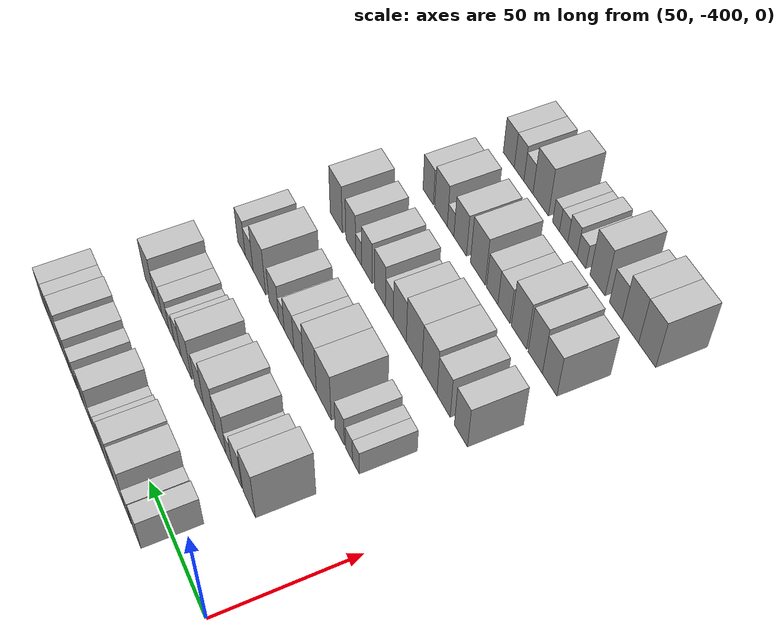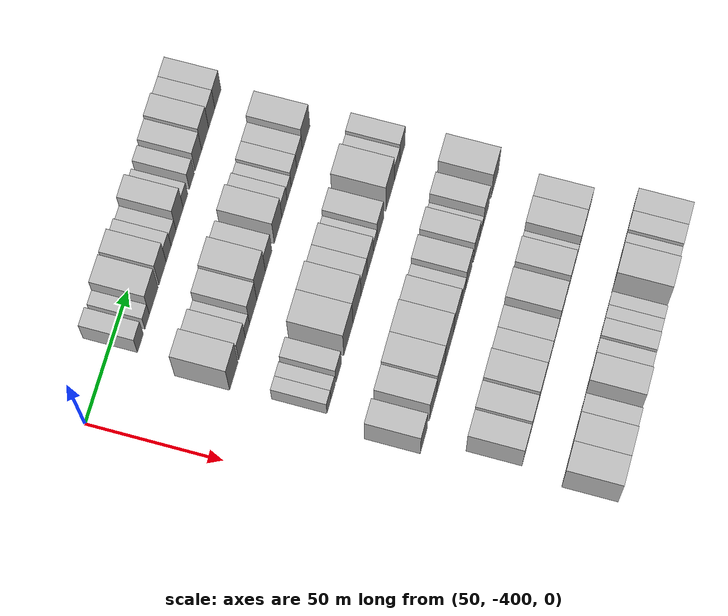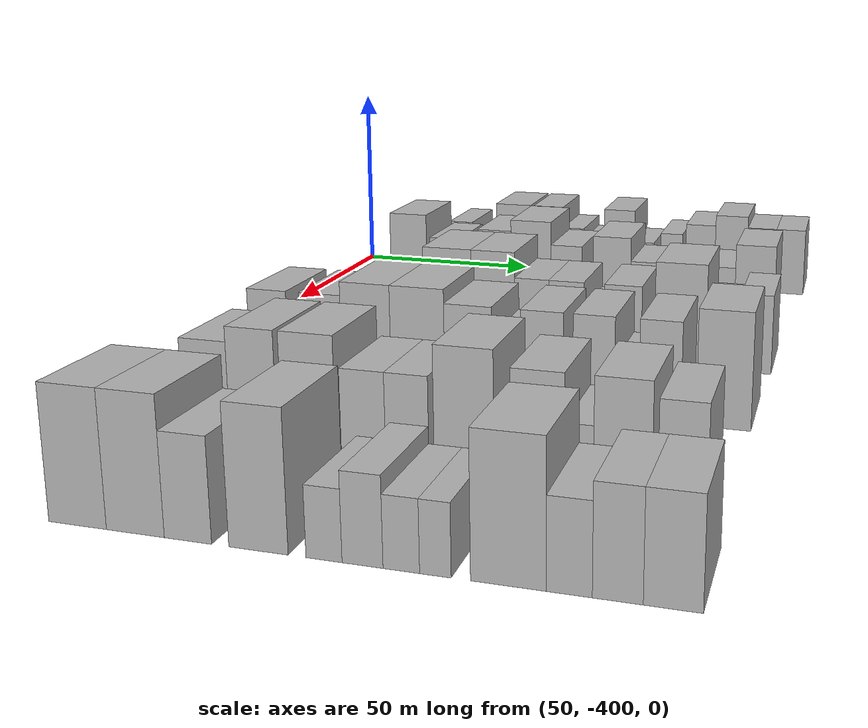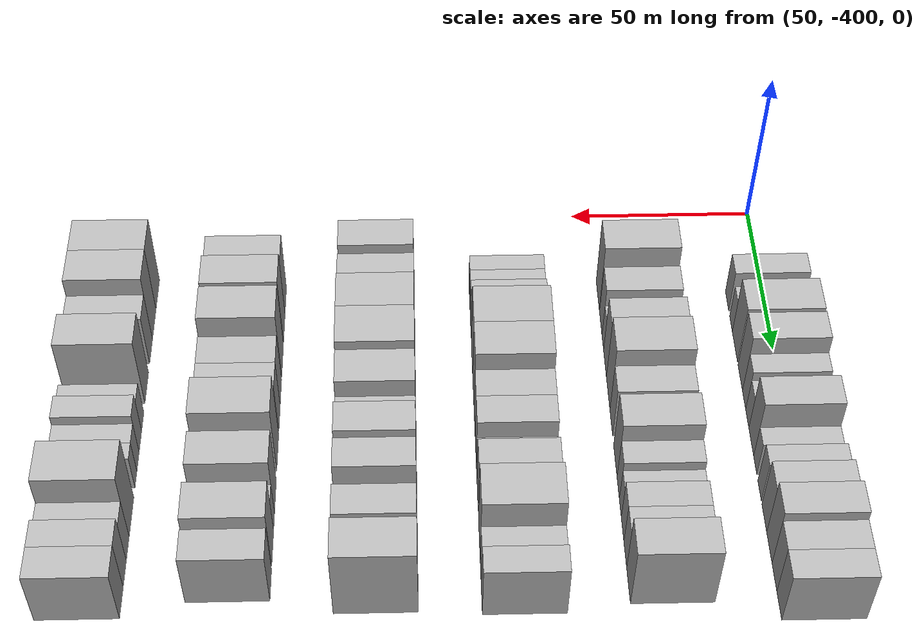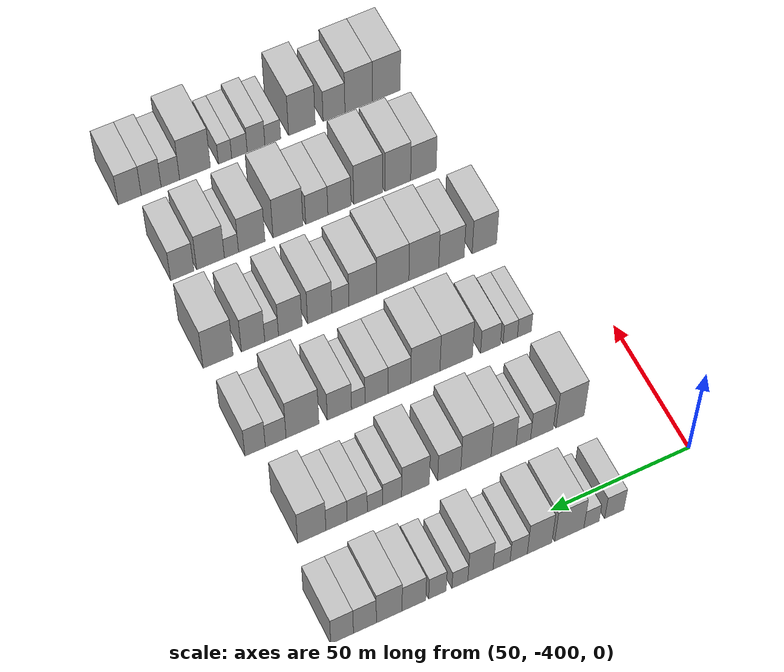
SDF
<sdf version="1.6">
 <world name="default">
  <model name="building_25">
   <static>1</static>
   <pose>50.0000 -367.2235 0 0.000000 0.000000 0.000000</pose>
   <link name="link">
    <pose>0 0 7.50 0 0 0</pose>
    <collision name="collision"><geometry><box><size>20.0000 6.9162 15.0000</size></box></geometry></collision>
    <visual name="visual">
     <cast_shadows>0</cast_shadows>
     <geometry><box><size>20.0000 6.9162 15.0000</size></box></geometry>
     <material>
      <script>
       <uri>model://HANNAS_wall/materials/scripts</uri>
       <uri>model://HANNAS_wall/materials/textures</uri>
       <name>vrc/HANNAS_wall</name>
      </script>
     </material>
    </visual>
   </link>
  </model>
  <model name="building_26">
   <static>1</static>
   <pose>50.0000 -359.0324 0 0.000000 0.000000 0.000000</pose>
   <link name="link">
    <pose>0 0 6.00 0 0 0</pose>
    <collision name="collision"><geometry><box><size>20.0000 5.4661 12.0000</size></box></geometry></collision>
    <visual name="visual">
     <cast_shadows>0</cast_shadows>
     <geometry><box><size>20.0000 5.4661 12.0000</size></box></geometry>
     <material>
      <script>
       <uri>model://HANNAS_wall/materials/scripts</uri>
       <uri>model://HANNAS_wall/materials/textures</uri>
       <name>vrc/HANNAS_wall</name>
      </script>
     </material>
    </visual>
   </link>
  </model>
  <model name="building_27">
   <static>1</static>
   <pose>50.0000 -351.0920 0 0.000000 0.000000 0.000000</pose>
   <link name="link">
    <pose>0 0 10.50 0 0 0</pose>
    <collision name="collision"><geometry><box><size>20.0000 10.4146 21.0000</size></box></geometry></collision>
    <visual name="visual">
     <cast_shadows>0</cast_shadows>
     <geometry><box><size>20.0000 10.4146 21.0000</size></box></geometry>
     <material>
      <script>
       <uri>model://HANNAS_wall/materials/scripts</uri>
       <uri>model://HANNAS_wall/materials/textures</uri>
       <name>vrc/HANNAS_wall</name>
      </script>
     </material>
    </visual>
   </link>
  </model>
  <model name="building_28">
   <static>1</static>
   <pose>50.0000 -340.5171 0 0.000000 0.000000 0.000000</pose>
   <link name="link">
    <pose>0 0 10.50 0 0 0</pose>
    <collision name="collision"><geometry><box><size>20.0000 8.7352 21.0000</size></box></geometry></collision>
    <visual name="visual">
     <cast_shadows>0</cast_shadows>
     <geometry><box><size>20.0000 8.7352 21.0000</size></box></geometry>
     <material>
      <script>
       <uri>model://HANNAS_wall/materials/scripts</uri>
       <uri>model://HANNAS_wall/materials/textures</uri>
       <name>vrc/HANNAS_wall</name>
      </script>
     </material>
    </visual>
   </link>
  </model>
  <model name="building_29">
   <static>1</static>
   <pose>50.0000 -333.0898 0 0.000000 0.000000 0.000000</pose>
   <link name="link">
    <pose>0 0 7.50 0 0 0</pose>
    <collision name="collision"><geometry><box><size>20.0000 6.1194 15.0000</size></box></geometry></collision>
    <visual name="visual">
     <cast_shadows>0</cast_shadows>
     <geometry><box><size>20.0000 6.1194 15.0000</size></box></geometry>
     <material>
      <script>
       <uri>model://HANNAS_wall/materials/scripts</uri>
       <uri>model://HANNAS_wall/materials/textures</uri>
       <name>vrc/HANNAS_wall</name>
      </script>
     </material>
    </visual>
   </link>
  </model>
  <model name="building_30">
   <static>1</static>
   <pose>50.0000 -327.0355 0 0.000000 0.000000 0.000000</pose>
   <link name="link">
    <pose>0 0 6.00 0 0 0</pose>
    <collision name="collision"><geometry><box><size>20.0000 5.9892 12.0000</size></box></geometry></collision>
    <visual name="visual">
     <cast_shadows>0</cast_shadows>
     <geometry><box><size>20.0000 5.9892 12.0000</size></box></geometry>
     <material>
      <script>
       <uri>model://HANNAS_wall/materials/scripts</uri>
       <uri>model://HANNAS_wall/materials/textures</uri>
       <name>vrc/HANNAS_wall</name>
      </script>
     </material>
    </visual>
   </link>
  </model>
  <model name="building_31">
   <static>1</static>
   <pose>50.0000 -319.6164 0 0.000000 0.000000 0.000000</pose>
   <link name="link">
    <pose>0 0 10.50 0 0 0</pose>
    <collision name="collision"><geometry><box><size>20.0000 8.8489 21.0000</size></box></geometry></collision>
    <visual name="visual">
     <cast_shadows>0</cast_shadows>
     <geometry><box><size>20.0000 8.8489 21.0000</size></box></geometry>
     <material>
      <script>
       <uri>model://HANNAS_wall/materials/scripts</uri>
       <uri>model://HANNAS_wall/materials/textures</uri>
       <name>vrc/HANNAS_wall</name>
      </script>
     </material>
    </visual>
   </link>
  </model>
  <model name="building_32">
   <static>1</static>
   <pose>50.0000 -312.4067 0 0.000000 0.000000 0.000000</pose>
   <link name="link">
    <pose>0 0 6.00 0 0 0</pose>
    <collision name="collision"><geometry><box><size>20.0000 5.5707 12.0000</size></box></geometry></collision>
    <visual name="visual">
     <cast_shadows>0</cast_shadows>
     <geometry><box><size>20.0000 5.5707 12.0000</size></box></geometry>
     <material>
      <script>
       <uri>model://HANNAS_wall/materials/scripts</uri>
       <uri>model://HANNAS_wall/materials/textures</uri>
       <name>vrc/HANNAS_wall</name>
      </script>
     </material>
    </visual>
   </link>
  </model>
  <model name="building_33">
   <static>1</static>
   <pose>50.0000 -304.5774 0 0.000000 0.000000 0.000000</pose>
   <link name="link">
    <pose>0 0 7.50 0 0 0</pose>
    <collision name="collision"><geometry><box><size>20.0000 6.0878 15.0000</size></box></geometry></collision>
    <visual name="visual">
     <cast_shadows>0</cast_shadows>
     <geometry><box><size>20.0000 6.0878 15.0000</size></box></geometry>
     <material>
      <script>
       <uri>model://HANNAS_wall/materials/scripts</uri>
       <uri>model://HANNAS_wall/materials/textures</uri>
       <name>vrc/HANNAS_wall</name>
      </script>
     </material>
    </visual>
   </link>
  </model>
  <model name="building_34">
   <static>1</static>
   <pose>50.0000 -296.4099 0 0.000000 0.000000 0.000000</pose>
   <link name="link">
    <pose>0 0 9.00 0 0 0</pose>
    <collision name="collision"><geometry><box><size>20.0000 8.2473 18.0000</size></box></geometry></collision>
    <visual name="visual">
     <cast_shadows>0</cast_shadows>
     <geometry><box><size>20.0000 8.2473 18.0000</size></box></geometry>
     <material>
      <script>
       <uri>model://HANNAS_wall/materials/scripts</uri>
       <uri>model://HANNAS_wall/materials/textures</uri>
       <name>vrc/HANNAS_wall</name>
      </script>
     </material>
    </visual>
   </link>
  </model>
  <model name="building_35">
   <static>1</static>
   <pose>50.0000 -287.8612 0 0.000000 0.000000 0.000000</pose>
   <link name="link">
    <pose>0 0 10.50 0 0 0</pose>
    <collision name="collision"><geometry><box><size>20.0000 8.8501 21.0000</size></box></geometry></collision>
    <visual name="visual">
     <cast_shadows>0</cast_shadows>
     <geometry><box><size>20.0000 8.8501 21.0000</size></box></geometry>
     <material>
      <script>
       <uri>model://HANNAS_wall/materials/scripts</uri>
       <uri>model://HANNAS_wall/materials/textures</uri>
       <name>vrc/HANNAS_wall</name>
      </script>
     </material>
    </visual>
   </link>
  </model>
  <model name="building_36">
   <static>1</static>
   <pose>50.0000 -279.5082 0 0.000000 0.000000 0.000000</pose>
   <link name="link">
    <pose>0 0 9.00 0 0 0</pose>
    <collision name="collision"><geometry><box><size>20.0000 7.8559 18.0000</size></box></geometry></collision>
    <visual name="visual">
     <cast_shadows>0</cast_shadows>
     <geometry><box><size>20.0000 7.8559 18.0000</size></box></geometry>
     <material>
      <script>
       <uri>model://HANNAS_wall/materials/scripts</uri>
       <uri>model://HANNAS_wall/materials/textures</uri>
       <name>vrc/HANNAS_wall</name>
      </script>
     </material>
    </visual>
   </link>
  </model>
  <model name="building_37">
   <static>1</static>
   <pose>50.0000 -271.6983 0 0.000000 0.000000 0.000000</pose>
   <link name="link">
    <pose>0 0 9.00 0 0 0</pose>
    <collision name="collision"><geometry><box><size>20.0000 7.7639 18.0000</size></box></geometry></collision>
    <visual name="visual">
     <cast_shadows>0</cast_shadows>
     <geometry><box><size>20.0000 7.7639 18.0000</size></box></geometry>
     <material>
      <script>
       <uri>model://HANNAS_wall/materials/scripts</uri>
       <uri>model://HANNAS_wall/materials/textures</uri>
       <name>vrc/HANNAS_wall</name>
      </script>
     </material>
    </visual>
   </link>
  </model>
  <model name="building_159">
   <static>1</static>
   <pose>85.0000 -370.1567 0 0.000000 0.000000 0.000000</pose>
   <link name="link">
    <pose>0 0 12.00 0 0 0</pose>
    <collision name="collision"><geometry><box><size>20.0000 10.3174 24.0000</size></box></geometry></collision>
    <visual name="visual">
     <cast_shadows>0</cast_shadows>
     <geometry><box><size>20.0000 10.3174 24.0000</size></box></geometry>
     <material>
      <script>
       <uri>model://HANNAS_wall/materials/scripts</uri>
       <uri>model://HANNAS_wall/materials/textures</uri>
       <name>vrc/HANNAS_wall</name>
      </script>
     </material>
    </visual>
   </link>
  </model>
  <model name="building_160">
   <static>1</static>
   <pose>85.0000 -359.8728 0 0.000000 0.000000 0.000000</pose>
   <link name="link">
    <pose>0 0 9.00 0 0 0</pose>
    <collision name="collision"><geometry><box><size>20.0000 8.2504 18.0000</size></box></geometry></collision>
    <visual name="visual">
     <cast_shadows>0</cast_shadows>
     <geometry><box><size>20.0000 8.2504 18.0000</size></box></geometry>
     <material>
      <script>
       <uri>model://HANNAS_wall/materials/scripts</uri>
       <uri>model://HANNAS_wall/materials/textures</uri>
       <name>vrc/HANNAS_wall</name>
      </script>
     </material>
    </visual>
   </link>
  </model>
  <model name="building_161">
   <static>1</static>
   <pose>85.0000 -353.1298 0 0.000000 0.000000 0.000000</pose>
   <link name="link">
    <pose>0 0 6.00 0 0 0</pose>
    <collision name="collision"><geometry><box><size>20.0000 5.2355 12.0000</size></box></geometry></collision>
    <visual name="visual">
     <cast_shadows>0</cast_shadows>
     <geometry><box><size>20.0000 5.2355 12.0000</size></box></geometry>
     <material>
      <script>
       <uri>model://HANNAS_wall/materials/scripts</uri>
       <uri>model://HANNAS_wall/materials/textures</uri>
       <name>vrc/HANNAS_wall</name>
      </script>
     </material>
    </visual>
   </link>
  </model>
  <model name="building_162">
   <static>1</static>
   <pose>85.0000 -345.9728 0 0.000000 0.000000 0.000000</pose>
   <link name="link">
    <pose>0 0 10.50 0 0 0</pose>
    <collision name="collision"><geometry><box><size>20.0000 9.0785 21.0000</size></box></geometry></collision>
    <visual name="visual">
     <cast_shadows>0</cast_shadows>
     <geometry><box><size>20.0000 9.0785 21.0000</size></box></geometry>
     <material>
      <script>
       <uri>model://HANNAS_wall/materials/scripts</uri>
       <uri>model://HANNAS_wall/materials/textures</uri>
       <name>vrc/HANNAS_wall</name>
      </script>
     </material>
    </visual>
   </link>
  </model>
  <model name="building_163">
   <static>1</static>
   <pose>85.0000 -335.9956 0 0.000000 0.000000 0.000000</pose>
   <link name="link">
    <pose>0 0 12.00 0 0 0</pose>
    <collision name="collision"><geometry><box><size>20.0000 10.8760 24.0000</size></box></geometry></collision>
    <visual name="visual">
     <cast_shadows>0</cast_shadows>
     <geometry><box><size>20.0000 10.8760 24.0000</size></box></geometry>
     <material>
      <script>
       <uri>model://HANNAS_wall/materials/scripts</uri>
       <uri>model://HANNAS_wall/materials/textures</uri>
       <name>vrc/HANNAS_wall</name>
      </script>
     </material>
    </visual>
   </link>
  </model>
  <model name="building_164">
   <static>1</static>
   <pose>85.0000 -326.4263 0 0.000000 0.000000 0.000000</pose>
   <link name="link">
    <pose>0 0 9.00 0 0 0</pose>
    <collision name="collision"><geometry><box><size>20.0000 8.2626 18.0000</size></box></geometry></collision>
    <visual name="visual">
     <cast_shadows>0</cast_shadows>
     <geometry><box><size>20.0000 8.2626 18.0000</size></box></geometry>
     <material>
      <script>
       <uri>model://HANNAS_wall/materials/scripts</uri>
       <uri>model://HANNAS_wall/materials/textures</uri>
       <name>vrc/HANNAS_wall</name>
      </script>
     </material>
    </visual>
   </link>
  </model>
  <model name="building_165">
   <static>1</static>
   <pose>85.0000 -314.3813 0 0.000000 0.000000 0.000000</pose>
   <link name="link">
    <pose>0 0 10.50 0 0 0</pose>
    <collision name="collision"><geometry><box><size>20.0000 9.8274 21.0000</size></box></geometry></collision>
    <visual name="visual">
     <cast_shadows>0</cast_shadows>
     <geometry><box><size>20.0000 9.8274 21.0000</size></box></geometry>
     <material>
      <script>
       <uri>model://HANNAS_wall/materials/scripts</uri>
       <uri>model://HANNAS_wall/materials/textures</uri>
       <name>vrc/HANNAS_wall</name>
      </script>
     </material>
    </visual>
   </link>
  </model>
  <model name="building_166">
   <static>1</static>
   <pose>85.0000 -306.1207 0 0.000000 0.000000 0.000000</pose>
   <link name="link">
    <pose>0 0 7.50 0 0 0</pose>
    <collision name="collision"><geometry><box><size>20.0000 6.6938 15.0000</size></box></geometry></collision>
    <visual name="visual">
     <cast_shadows>0</cast_shadows>
     <geometry><box><size>20.0000 6.6938 15.0000</size></box></geometry>
     <material>
      <script>
       <uri>model://HANNAS_wall/materials/scripts</uri>
       <uri>model://HANNAS_wall/materials/textures</uri>
       <name>vrc/HANNAS_wall</name>
      </script>
     </material>
    </visual>
   </link>
  </model>
  <model name="building_167">
   <static>1</static>
   <pose>85.0000 -300.0703 0 0.000000 0.000000 0.000000</pose>
   <link name="link">
    <pose>0 0 6.00 0 0 0</pose>
    <collision name="collision"><geometry><box><size>20.0000 5.4071 12.0000</size></box></geometry></collision>
    <visual name="visual">
     <cast_shadows>0</cast_shadows>
     <geometry><box><size>20.0000 5.4071 12.0000</size></box></geometry>
     <material>
      <script>
       <uri>model://HANNAS_wall/materials/scripts</uri>
       <uri>model://HANNAS_wall/materials/textures</uri>
       <name>vrc/HANNAS_wall</name>
      </script>
     </material>
    </visual>
   </link>
  </model>
  <model name="building_168">
   <static>1</static>
   <pose>85.0000 -293.8270 0 0.000000 0.000000 0.000000</pose>
   <link name="link">
    <pose>0 0 7.50 0 0 0</pose>
    <collision name="collision"><geometry><box><size>20.0000 7.0795 15.0000</size></box></geometry></collision>
    <visual name="visual">
     <cast_shadows>0</cast_shadows>
     <geometry><box><size>20.0000 7.0795 15.0000</size></box></geometry>
     <material>
      <script>
       <uri>model://HANNAS_wall/materials/scripts</uri>
       <uri>model://HANNAS_wall/materials/textures</uri>
       <name>vrc/HANNAS_wall</name>
      </script>
     </material>
    </visual>
   </link>
  </model>
  <model name="building_169">
   <static>1</static>
   <pose>85.0000 -286.5811 0 0.000000 0.000000 0.000000</pose>
   <link name="link">
    <pose>0 0 7.50 0 0 0</pose>
    <collision name="collision"><geometry><box><size>20.0000 7.4122 15.0000</size></box></geometry></collision>
    <visual name="visual">
     <cast_shadows>0</cast_shadows>
     <geometry><box><size>20.0000 7.4122 15.0000</size></box></geometry>
     <material>
      <script>
       <uri>model://HANNAS_wall/materials/scripts</uri>
       <uri>model://HANNAS_wall/materials/textures</uri>
       <name>vrc/HANNAS_wall</name>
      </script>
     </material>
    </visual>
   </link>
  </model>
  <model name="building_170">
   <static>1</static>
   <pose>85.0000 -277.9471 0 0.000000 0.000000 0.000000</pose>
   <link name="link">
    <pose>0 0 10.50 0 0 0</pose>
    <collision name="collision"><geometry><box><size>20.0000 9.8559 21.0000</size></box></geometry></collision>
    <visual name="visual">
     <cast_shadows>0</cast_shadows>
     <geometry><box><size>20.0000 9.8559 21.0000</size></box></geometry>
     <material>
      <script>
       <uri>model://HANNAS_wall/materials/scripts</uri>
       <uri>model://HANNAS_wall/materials/textures</uri>
       <name>vrc/HANNAS_wall</name>
      </script>
     </material>
    </visual>
   </link>
  </model>
  <model name="building_288">
   <static>1</static>
   <pose>120.0000 -371.8585 0 0.000000 0.000000 0.000000</pose>
   <link name="link">
    <pose>0 0 6.00 0 0 0</pose>
    <collision name="collision"><geometry><box><size>20.0000 5.1645 12.0000</size></box></geometry></collision>
    <visual name="visual">
     <cast_shadows>0</cast_shadows>
     <geometry><box><size>20.0000 5.1645 12.0000</size></box></geometry>
     <material>
      <script>
       <uri>model://HANNAS_wall/materials/scripts</uri>
       <uri>model://HANNAS_wall/materials/textures</uri>
       <name>vrc/HANNAS_wall</name>
      </script>
     </material>
    </visual>
   </link>
  </model>
  <model name="building_289">
   <static>1</static>
   <pose>120.0000 -366.6323 0 0.000000 0.000000 0.000000</pose>
   <link name="link">
    <pose>0 0 6.00 0 0 0</pose>
    <collision name="collision"><geometry><box><size>20.0000 5.2880 12.0000</size></box></geometry></collision>
    <visual name="visual">
     <cast_shadows>0</cast_shadows>
     <geometry><box><size>20.0000 5.2880 12.0000</size></box></geometry>
     <material>
      <script>
       <uri>model://HANNAS_wall/materials/scripts</uri>
       <uri>model://HANNAS_wall/materials/textures</uri>
       <name>vrc/HANNAS_wall</name>
      </script>
     </material>
    </visual>
   </link>
  </model>
  <model name="building_290">
   <static>1</static>
   <pose>120.0000 -359.3294 0 0.000000 0.000000 0.000000</pose>
   <link name="link">
    <pose>0 0 7.50 0 0 0</pose>
    <collision name="collision"><geometry><box><size>20.0000 7.3178 15.0000</size></box></geometry></collision>
    <visual name="visual">
     <cast_shadows>0</cast_shadows>
     <geometry><box><size>20.0000 7.3178 15.0000</size></box></geometry>
     <material>
      <script>
       <uri>model://HANNAS_wall/materials/scripts</uri>
       <uri>model://HANNAS_wall/materials/textures</uri>
       <name>vrc/HANNAS_wall</name>
      </script>
     </material>
    </visual>
   </link>
  </model>
  <model name="building_291">
   <static>1</static>
   <pose>120.0000 -346.7161 0 0.000000 0.000000 0.000000</pose>
   <link name="link">
    <pose>0 0 12.00 0 0 0</pose>
    <collision name="collision"><geometry><box><size>20.0000 11.9087 24.0000</size></box></geometry></collision>
    <visual name="visual">
     <cast_shadows>0</cast_shadows>
     <geometry><box><size>20.0000 11.9087 24.0000</size></box></geometry>
     <material>
      <script>
       <uri>model://HANNAS_wall/materials/scripts</uri>
       <uri>model://HANNAS_wall/materials/textures</uri>
       <name>vrc/HANNAS_wall</name>
      </script>
     </material>
    </visual>
   </link>
  </model>
  <model name="building_292">
   <static>1</static>
   <pose>120.0000 -335.4321 0 0.000000 0.000000 0.000000</pose>
   <link name="link">
    <pose>0 0 12.00 0 0 0</pose>
    <collision name="collision"><geometry><box><size>20.0000 10.6594 24.0000</size></box></geometry></collision>
    <visual name="visual">
     <cast_shadows>0</cast_shadows>
     <geometry><box><size>20.0000 10.6594 24.0000</size></box></geometry>
     <material>
      <script>
       <uri>model://HANNAS_wall/materials/scripts</uri>
       <uri>model://HANNAS_wall/materials/textures</uri>
       <name>vrc/HANNAS_wall</name>
      </script>
     </material>
    </visual>
   </link>
  </model>
  <model name="building_293">
   <static>1</static>
   <pose>120.0000 -325.9784 0 0.000000 0.000000 0.000000</pose>
   <link name="link">
    <pose>0 0 9.00 0 0 0</pose>
    <collision name="collision"><geometry><box><size>20.0000 8.2480 18.0000</size></box></geometry></collision>
    <visual name="visual">
     <cast_shadows>0</cast_shadows>
     <geometry><box><size>20.0000 8.2480 18.0000</size></box></geometry>
     <material>
      <script>
       <uri>model://HANNAS_wall/materials/scripts</uri>
       <uri>model://HANNAS_wall/materials/textures</uri>
       <name>vrc/HANNAS_wall</name>
      </script>
     </material>
    </visual>
   </link>
  </model>
  <model name="building_294">
   <static>1</static>
   <pose>120.0000 -317.7047 0 0.000000 0.000000 0.000000</pose>
   <link name="link">
    <pose>0 0 9.00 0 0 0</pose>
    <collision name="collision"><geometry><box><size>20.0000 8.2993 18.0000</size></box></geometry></collision>
    <visual name="visual">
     <cast_shadows>0</cast_shadows>
     <geometry><box><size>20.0000 8.2993 18.0000</size></box></geometry>
     <material>
      <script>
       <uri>model://HANNAS_wall/materials/scripts</uri>
       <uri>model://HANNAS_wall/materials/textures</uri>
       <name>vrc/HANNAS_wall</name>
      </script>
     </material>
    </visual>
   </link>
  </model>
  <model name="building_295">
   <static>1</static>
   <pose>120.0000 -311.1304 0 0.000000 0.000000 0.000000</pose>
   <link name="link">
    <pose>0 0 6.00 0 0 0</pose>
    <collision name="collision"><geometry><box><size>20.0000 4.8494 12.0000</size></box></geometry></collision>
    <visual name="visual">
     <cast_shadows>0</cast_shadows>
     <geometry><box><size>20.0000 4.8494 12.0000</size></box></geometry>
     <material>
      <script>
       <uri>model://HANNAS_wall/materials/scripts</uri>
       <uri>model://HANNAS_wall/materials/textures</uri>
       <name>vrc/HANNAS_wall</name>
      </script>
     </material>
    </visual>
   </link>
  </model>
  <model name="building_296">
   <static>1</static>
   <pose>120.0000 -304.3685 0 0.000000 0.000000 0.000000</pose>
   <link name="link">
    <pose>0 0 9.00 0 0 0</pose>
    <collision name="collision"><geometry><box><size>20.0000 8.6744 18.0000</size></box></geometry></collision>
    <visual name="visual">
     <cast_shadows>0</cast_shadows>
     <geometry><box><size>20.0000 8.6744 18.0000</size></box></geometry>
     <material>
      <script>
       <uri>model://HANNAS_wall/materials/scripts</uri>
       <uri>model://HANNAS_wall/materials/textures</uri>
       <name>vrc/HANNAS_wall</name>
      </script>
     </material>
    </visual>
   </link>
  </model>
  <model name="building_297">
   <static>1</static>
   <pose>120.0000 -291.1910 0 0.000000 0.000000 0.000000</pose>
   <link name="link">
    <pose>0 0 12.00 0 0 0</pose>
    <collision name="collision"><geometry><box><size>20.0000 11.6807 24.0000</size></box></geometry></collision>
    <visual name="visual">
     <cast_shadows>0</cast_shadows>
     <geometry><box><size>20.0000 11.6807 24.0000</size></box></geometry>
     <material>
      <script>
       <uri>model://HANNAS_wall/materials/scripts</uri>
       <uri>model://HANNAS_wall/materials/textures</uri>
       <name>vrc/HANNAS_wall</name>
      </script>
     </material>
    </visual>
   </link>
  </model>
  <model name="building_298">
   <static>1</static>
   <pose>120.0000 -281.6755 0 0.000000 0.000000 0.000000</pose>
   <link name="link">
    <pose>0 0 7.50 0 0 0</pose>
    <collision name="collision"><geometry><box><size>20.0000 7.3504 15.0000</size></box></geometry></collision>
    <visual name="visual">
     <cast_shadows>0</cast_shadows>
     <geometry><box><size>20.0000 7.3504 15.0000</size></box></geometry>
     <material>
      <script>
       <uri>model://HANNAS_wall/materials/scripts</uri>
       <uri>model://HANNAS_wall/materials/textures</uri>
       <name>vrc/HANNAS_wall</name>
      </script>
     </material>
    </visual>
   </link>
  </model>
  <model name="building_299">
   <static>1</static>
   <pose>120.0000 -274.3947 0 0.000000 0.000000 0.000000</pose>
   <link name="link">
    <pose>0 0 9.00 0 0 0</pose>
    <collision name="collision"><geometry><box><size>20.0000 7.2111 18.0000</size></box></geometry></collision>
    <visual name="visual">
     <cast_shadows>0</cast_shadows>
     <geometry><box><size>20.0000 7.2111 18.0000</size></box></geometry>
     <material>
      <script>
       <uri>model://HANNAS_wall/materials/scripts</uri>
       <uri>model://HANNAS_wall/materials/textures</uri>
       <name>vrc/HANNAS_wall</name>
      </script>
     </material>
    </visual>
   </link>
  </model>
  <model name="building_421">
   <static>1</static>
   <pose>155.0000 -375.1003 0 0.000000 0.000000 0.000000</pose>
   <link name="link">
    <pose>0 0 10.50 0 0 0</pose>
    <collision name="collision"><geometry><box><size>20.0000 9.2056 21.0000</size></box></geometry></collision>
    <visual name="visual">
     <cast_shadows>0</cast_shadows>
     <geometry><box><size>20.0000 9.2056 21.0000</size></box></geometry>
     <material>
      <script>
       <uri>model://HANNAS_wall/materials/scripts</uri>
       <uri>model://HANNAS_wall/materials/textures</uri>
       <name>vrc/HANNAS_wall</name>
      </script>
     </material>
    </visual>
   </link>
  </model>
  <model name="building_422">
   <static>1</static>
   <pose>155.0000 -362.7379 0 0.000000 0.000000 0.000000</pose>
   <link name="link">
    <pose>0 0 10.50 0 0 0</pose>
    <collision name="collision"><geometry><box><size>20.0000 9.5192 21.0000</size></box></geometry></collision>
    <visual name="visual">
     <cast_shadows>0</cast_shadows>
     <geometry><box><size>20.0000 9.5192 21.0000</size></box></geometry>
     <material>
      <script>
       <uri>model://HANNAS_wall/materials/scripts</uri>
       <uri>model://HANNAS_wall/materials/textures</uri>
       <name>vrc/HANNAS_wall</name>
      </script>
     </material>
    </visual>
   </link>
  </model>
  <model name="building_423">
   <static>1</static>
   <pose>155.0000 -352.3982 0 0.000000 0.000000 0.000000</pose>
   <link name="link">
    <pose>0 0 12.00 0 0 0</pose>
    <collision name="collision"><geometry><box><size>20.0000 11.1602 24.0000</size></box></geometry></collision>
    <visual name="visual">
     <cast_shadows>0</cast_shadows>
     <geometry><box><size>20.0000 11.1602 24.0000</size></box></geometry>
     <material>
      <script>
       <uri>model://HANNAS_wall/materials/scripts</uri>
       <uri>model://HANNAS_wall/materials/textures</uri>
       <name>vrc/HANNAS_wall</name>
      </script>
     </material>
    </visual>
   </link>
  </model>
  <model name="building_424">
   <static>1</static>
   <pose>155.0000 -340.8505 0 0.000000 0.000000 0.000000</pose>
   <link name="link">
    <pose>0 0 12.00 0 0 0</pose>
    <collision name="collision"><geometry><box><size>20.0000 11.9352 24.0000</size></box></geometry></collision>
    <visual name="visual">
     <cast_shadows>0</cast_shadows>
     <geometry><box><size>20.0000 11.9352 24.0000</size></box></geometry>
     <material>
      <script>
       <uri>model://HANNAS_wall/materials/scripts</uri>
       <uri>model://HANNAS_wall/materials/textures</uri>
       <name>vrc/HANNAS_wall</name>
      </script>
     </material>
    </visual>
   </link>
  </model>
  <model name="building_425">
   <static>1</static>
   <pose>155.0000 -329.7757 0 0.000000 0.000000 0.000000</pose>
   <link name="link">
    <pose>0 0 10.50 0 0 0</pose>
    <collision name="collision"><geometry><box><size>20.0000 10.2144 21.0000</size></box></geometry></collision>
    <visual name="visual">
     <cast_shadows>0</cast_shadows>
     <geometry><box><size>20.0000 10.2144 21.0000</size></box></geometry>
     <material>
      <script>
       <uri>model://HANNAS_wall/materials/scripts</uri>
       <uri>model://HANNAS_wall/materials/textures</uri>
       <name>vrc/HANNAS_wall</name>
      </script>
     </material>
    </visual>
   </link>
  </model>
  <model name="building_426">
   <static>1</static>
   <pose>155.0000 -321.5691 0 0.000000 0.000000 0.000000</pose>
   <link name="link">
    <pose>0 0 7.50 0 0 0</pose>
    <collision name="collision"><geometry><box><size>20.0000 6.1989 15.0000</size></box></geometry></collision>
    <visual name="visual">
     <cast_shadows>0</cast_shadows>
     <geometry><box><size>20.0000 6.1989 15.0000</size></box></geometry>
     <material>
      <script>
       <uri>model://HANNAS_wall/materials/scripts</uri>
       <uri>model://HANNAS_wall/materials/textures</uri>
       <name>vrc/HANNAS_wall</name>
      </script>
     </material>
    </visual>
   </link>
  </model>
  <model name="building_427">
   <static>1</static>
   <pose>155.0000 -314.0011 0 0.000000 0.000000 0.000000</pose>
   <link name="link">
    <pose>0 0 10.50 0 0 0</pose>
    <collision name="collision"><geometry><box><size>20.0000 8.9370 21.0000</size></box></geometry></collision>
    <visual name="visual">
     <cast_shadows>0</cast_shadows>
     <geometry><box><size>20.0000 8.9370 21.0000</size></box></geometry>
     <material>
      <script>
       <uri>model://HANNAS_wall/materials/scripts</uri>
       <uri>model://HANNAS_wall/materials/textures</uri>
       <name>vrc/HANNAS_wall</name>
      </script>
     </material>
    </visual>
   </link>
  </model>
  <model name="building_428">
   <static>1</static>
   <pose>155.0000 -303.2437 0 0.000000 0.000000 0.000000</pose>
   <link name="link">
    <pose>0 0 10.50 0 0 0</pose>
    <collision name="collision"><geometry><box><size>20.0000 8.5777 21.0000</size></box></geometry></collision>
    <visual name="visual">
     <cast_shadows>0</cast_shadows>
     <geometry><box><size>20.0000 8.5777 21.0000</size></box></geometry>
     <material>
      <script>
       <uri>model://HANNAS_wall/materials/scripts</uri>
       <uri>model://HANNAS_wall/materials/textures</uri>
       <name>vrc/HANNAS_wall</name>
      </script>
     </material>
    </visual>
   </link>
  </model>
  <model name="building_429">
   <static>1</static>
   <pose>155.0000 -296.4632 0 0.000000 0.000000 0.000000</pose>
   <link name="link">
    <pose>0 0 6.00 0 0 0</pose>
    <collision name="collision"><geometry><box><size>20.0000 4.9833 12.0000</size></box></geometry></collision>
    <visual name="visual">
     <cast_shadows>0</cast_shadows>
     <geometry><box><size>20.0000 4.9833 12.0000</size></box></geometry>
     <material>
      <script>
       <uri>model://HANNAS_wall/materials/scripts</uri>
       <uri>model://HANNAS_wall/materials/textures</uri>
       <name>vrc/HANNAS_wall</name>
      </script>
     </material>
    </visual>
   </link>
  </model>
  <model name="building_430">
   <static>1</static>
   <pose>155.0000 -289.7532 0 0.000000 0.000000 0.000000</pose>
   <link name="link">
    <pose>0 0 10.50 0 0 0</pose>
    <collision name="collision"><geometry><box><size>20.0000 8.4369 21.0000</size></box></geometry></collision>
    <visual name="visual">
     <cast_shadows>0</cast_shadows>
     <geometry><box><size>20.0000 8.4369 21.0000</size></box></geometry>
     <material>
      <script>
       <uri>model://HANNAS_wall/materials/scripts</uri>
       <uri>model://HANNAS_wall/materials/textures</uri>
       <name>vrc/HANNAS_wall</name>
      </script>
     </material>
    </visual>
   </link>
  </model>
  <model name="building_431">
   <static>1</static>
   <pose>155.0000 -277.1594 0 0.000000 0.000000 0.000000</pose>
   <link name="link">
    <pose>0 0 12.00 0 0 0</pose>
    <collision name="collision"><geometry><box><size>20.0000 10.7507 24.0000</size></box></geometry></collision>
    <visual name="visual">
     <cast_shadows>0</cast_shadows>
     <geometry><box><size>20.0000 10.7507 24.0000</size></box></geometry>
     <material>
      <script>
       <uri>model://HANNAS_wall/materials/scripts</uri>
       <uri>model://HANNAS_wall/materials/textures</uri>
       <name>vrc/HANNAS_wall</name>
      </script>
     </material>
    </visual>
   </link>
  </model>
  <model name="building_551">
   <static>1</static>
   <pose>190.0000 -369.7437 0 0.000000 0.000000 0.000000</pose>
   <link name="link">
    <pose>0 0 10.50 0 0 0</pose>
    <collision name="collision"><geometry><box><size>20.0000 9.7283 21.0000</size></box></geometry></collision>
    <visual name="visual">
     <cast_shadows>0</cast_shadows>
     <geometry><box><size>20.0000 9.7283 21.0000</size></box></geometry>
     <material>
      <script>
       <uri>model://HANNAS_wall/materials/scripts</uri>
       <uri>model://HANNAS_wall/materials/textures</uri>
       <name>vrc/HANNAS_wall</name>
      </script>
     </material>
    </visual>
   </link>
  </model>
  <model name="building_552">
   <static>1</static>
   <pose>190.0000 -360.0081 0 0.000000 0.000000 0.000000</pose>
   <link name="link">
    <pose>0 0 12.00 0 0 0</pose>
    <collision name="collision"><geometry><box><size>20.0000 9.7429 24.0000</size></box></geometry></collision>
    <visual name="visual">
     <cast_shadows>0</cast_shadows>
     <geometry><box><size>20.0000 9.7429 24.0000</size></box></geometry>
     <material>
      <script>
       <uri>model://HANNAS_wall/materials/scripts</uri>
       <uri>model://HANNAS_wall/materials/textures</uri>
       <name>vrc/HANNAS_wall</name>
      </script>
     </material>
    </visual>
   </link>
  </model>
  <model name="building_553">
   <static>1</static>
   <pose>190.0000 -348.7313 0 0.000000 0.000000 0.000000</pose>
   <link name="link">
    <pose>0 0 12.00 0 0 0</pose>
    <collision name="collision"><geometry><box><size>20.0000 10.8107 24.0000</size></box></geometry></collision>
    <visual name="visual">
     <cast_shadows>0</cast_shadows>
     <geometry><box><size>20.0000 10.8107 24.0000</size></box></geometry>
     <material>
      <script>
       <uri>model://HANNAS_wall/materials/scripts</uri>
       <uri>model://HANNAS_wall/materials/textures</uri>
       <name>vrc/HANNAS_wall</name>
      </script>
     </material>
    </visual>
   </link>
  </model>
  <model name="building_554">
   <static>1</static>
   <pose>190.0000 -337.9859 0 0.000000 0.000000 0.000000</pose>
   <link name="link">
    <pose>0 0 9.00 0 0 0</pose>
    <collision name="collision"><geometry><box><size>20.0000 8.6802 18.0000</size></box></geometry></collision>
    <visual name="visual">
     <cast_shadows>0</cast_shadows>
     <geometry><box><size>20.0000 8.6802 18.0000</size></box></geometry>
     <material>
      <script>
       <uri>model://HANNAS_wall/materials/scripts</uri>
       <uri>model://HANNAS_wall/materials/textures</uri>
       <name>vrc/HANNAS_wall</name>
      </script>
     </material>
    </visual>
   </link>
  </model>
  <model name="building_555">
   <static>1</static>
   <pose>190.0000 -329.4924 0 0.000000 0.000000 0.000000</pose>
   <link name="link">
    <pose>0 0 9.00 0 0 0</pose>
    <collision name="collision"><geometry><box><size>20.0000 8.3068 18.0000</size></box></geometry></collision>
    <visual name="visual">
     <cast_shadows>0</cast_shadows>
     <geometry><box><size>20.0000 8.3068 18.0000</size></box></geometry>
     <material>
      <script>
       <uri>model://HANNAS_wall/materials/scripts</uri>
       <uri>model://HANNAS_wall/materials/textures</uri>
       <name>vrc/HANNAS_wall</name>
      </script>
     </material>
    </visual>
   </link>
  </model>
  <model name="building_556">
   <static>1</static>
   <pose>190.0000 -318.7744 0 0.000000 0.000000 0.000000</pose>
   <link name="link">
    <pose>0 0 12.00 0 0 0</pose>
    <collision name="collision"><geometry><box><size>20.0000 11.1293 24.0000</size></box></geometry></collision>
    <visual name="visual">
     <cast_shadows>0</cast_shadows>
     <geometry><box><size>20.0000 11.1293 24.0000</size></box></geometry>
     <material>
      <script>
       <uri>model://HANNAS_wall/materials/scripts</uri>
       <uri>model://HANNAS_wall/materials/textures</uri>
       <name>vrc/HANNAS_wall</name>
      </script>
     </material>
    </visual>
   </link>
  </model>
  <model name="building_557">
   <static>1</static>
   <pose>190.0000 -305.3273 0 0.000000 0.000000 0.000000</pose>
   <link name="link">
    <pose>0 0 10.50 0 0 0</pose>
    <collision name="collision"><geometry><box><size>20.0000 9.7649 21.0000</size></box></geometry></collision>
    <visual name="visual">
     <cast_shadows>0</cast_shadows>
     <geometry><box><size>20.0000 9.7649 21.0000</size></box></geometry>
     <material>
      <script>
       <uri>model://HANNAS_wall/materials/scripts</uri>
       <uri>model://HANNAS_wall/materials/textures</uri>
       <name>vrc/HANNAS_wall</name>
      </script>
     </material>
    </visual>
   </link>
  </model>
  <model name="building_558">
   <static>1</static>
   <pose>190.0000 -297.8483 0 0.000000 0.000000 0.000000</pose>
   <link name="link">
    <pose>0 0 6.00 0 0 0</pose>
    <collision name="collision"><geometry><box><size>20.0000 5.1930 12.0000</size></box></geometry></collision>
    <visual name="visual">
     <cast_shadows>0</cast_shadows>
     <geometry><box><size>20.0000 5.1930 12.0000</size></box></geometry>
     <material>
      <script>
       <uri>model://HANNAS_wall/materials/scripts</uri>
       <uri>model://HANNAS_wall/materials/textures</uri>
       <name>vrc/HANNAS_wall</name>
      </script>
     </material>
    </visual>
   </link>
  </model>
  <model name="building_559">
   <static>1</static>
   <pose>190.0000 -290.1576 0 0.000000 0.000000 0.000000</pose>
   <link name="link">
    <pose>0 0 10.50 0 0 0</pose>
    <collision name="collision"><geometry><box><size>20.0000 10.1886 21.0000</size></box></geometry></collision>
    <visual name="visual">
     <cast_shadows>0</cast_shadows>
     <geometry><box><size>20.0000 10.1886 21.0000</size></box></geometry>
     <material>
      <script>
       <uri>model://HANNAS_wall/materials/scripts</uri>
       <uri>model://HANNAS_wall/materials/textures</uri>
       <name>vrc/HANNAS_wall</name>
      </script>
     </material>
    </visual>
   </link>
  </model>
  <model name="building_560">
   <static>1</static>
   <pose>190.0000 -279.8135 0 0.000000 0.000000 0.000000</pose>
   <link name="link">
    <pose>0 0 9.00 0 0 0</pose>
    <collision name="collision"><geometry><box><size>20.0000 8.4996 18.0000</size></box></geometry></collision>
    <visual name="visual">
     <cast_shadows>0</cast_shadows>
     <geometry><box><size>20.0000 8.4996 18.0000</size></box></geometry>
     <material>
      <script>
       <uri>model://HANNAS_wall/materials/scripts</uri>
       <uri>model://HANNAS_wall/materials/textures</uri>
       <name>vrc/HANNAS_wall</name>
      </script>
     </material>
    </visual>
   </link>
  </model>
  <model name="building_676">
   <static>1</static>
   <pose>225.0000 -372.8218 0 0.000000 0.000000 0.000000</pose>
   <link name="link">
    <pose>0 0 12.00 0 0 0</pose>
    <collision name="collision"><geometry><box><size>20.0000 10.7867 24.0000</size></box></geometry></collision>
    <visual name="visual">
     <cast_shadows>0</cast_shadows>
     <geometry><box><size>20.0000 10.7867 24.0000</size></box></geometry>
     <material>
      <script>
       <uri>model://HANNAS_wall/materials/scripts</uri>
       <uri>model://HANNAS_wall/materials/textures</uri>
       <name>vrc/HANNAS_wall</name>
      </script>
     </material>
    </visual>
   </link>
  </model>
  <model name="building_677">
   <static>1</static>
   <pose>225.0000 -362.1578 0 0.000000 0.000000 0.000000</pose>
   <link name="link">
    <pose>0 0 12.00 0 0 0</pose>
    <collision name="collision"><geometry><box><size>20.0000 10.5414 24.0000</size></box></geometry></collision>
    <visual name="visual">
     <cast_shadows>0</cast_shadows>
     <geometry><box><size>20.0000 10.5414 24.0000</size></box></geometry>
     <material>
      <script>
       <uri>model://HANNAS_wall/materials/scripts</uri>
       <uri>model://HANNAS_wall/materials/textures</uri>
       <name>vrc/HANNAS_wall</name>
      </script>
     </material>
    </visual>
   </link>
  </model>
  <model name="building_678">
   <static>1</static>
   <pose>225.0000 -352.6916 0 0.000000 0.000000 0.000000</pose>
   <link name="link">
    <pose>0 0 9.00 0 0 0</pose>
    <collision name="collision"><geometry><box><size>20.0000 8.3911 18.0000</size></box></geometry></collision>
    <visual name="visual">
     <cast_shadows>0</cast_shadows>
     <geometry><box><size>20.0000 8.3911 18.0000</size></box></geometry>
     <material>
      <script>
       <uri>model://HANNAS_wall/materials/scripts</uri>
       <uri>model://HANNAS_wall/materials/textures</uri>
       <name>vrc/HANNAS_wall</name>
      </script>
     </material>
    </visual>
   </link>
  </model>
  <model name="building_679">
   <static>1</static>
   <pose>225.0000 -340.4121 0 0.000000 0.000000 0.000000</pose>
   <link name="link">
    <pose>0 0 12.00 0 0 0</pose>
    <collision name="collision"><geometry><box><size>20.0000 10.1678 24.0000</size></box></geometry></collision>
    <visual name="visual">
     <cast_shadows>0</cast_shadows>
     <geometry><box><size>20.0000 10.1678 24.0000</size></box></geometry>
     <material>
      <script>
       <uri>model://HANNAS_wall/materials/scripts</uri>
       <uri>model://HANNAS_wall/materials/textures</uri>
       <name>vrc/HANNAS_wall</name>
      </script>
     </material>
    </visual>
   </link>
  </model>
  <model name="building_680">
   <static>1</static>
   <pose>225.0000 -329.3314 0 0.000000 0.000000 0.000000</pose>
   <link name="link">
    <pose>0 0 6.00 0 0 0</pose>
    <collision name="collision"><geometry><box><size>20.0000 5.9936 12.0000</size></box></geometry></collision>
    <visual name="visual">
     <cast_shadows>0</cast_shadows>
     <geometry><box><size>20.0000 5.9936 12.0000</size></box></geometry>
     <material>
      <script>
       <uri>model://HANNAS_wall/materials/scripts</uri>
       <uri>model://HANNAS_wall/materials/textures</uri>
       <name>vrc/HANNAS_wall</name>
      </script>
     </material>
    </visual>
   </link>
  </model>
  <model name="building_681">
   <static>1</static>
   <pose>225.0000 -322.9933 0 0.000000 0.000000 0.000000</pose>
   <link name="link">
    <pose>0 0 7.50 0 0 0</pose>
    <collision name="collision"><geometry><box><size>20.0000 6.6825 15.0000</size></box></geometry></collision>
    <visual name="visual">
     <cast_shadows>0</cast_shadows>
     <geometry><box><size>20.0000 6.6825 15.0000</size></box></geometry>
     <material>
      <script>
       <uri>model://HANNAS_wall/materials/scripts</uri>
       <uri>model://HANNAS_wall/materials/textures</uri>
       <name>vrc/HANNAS_wall</name>
      </script>
     </material>
    </visual>
   </link>
  </model>
  <model name="building_682">
   <static>1</static>
   <pose>225.0000 -316.7271 0 0.000000 0.000000 0.000000</pose>
   <link name="link">
    <pose>0 0 6.00 0 0 0</pose>
    <collision name="collision"><geometry><box><size>20.0000 5.8497 12.0000</size></box></geometry></collision>
    <visual name="visual">
     <cast_shadows>0</cast_shadows>
     <geometry><box><size>20.0000 5.8497 12.0000</size></box></geometry>
     <material>
      <script>
       <uri>model://HANNAS_wall/materials/scripts</uri>
       <uri>model://HANNAS_wall/materials/textures</uri>
       <name>vrc/HANNAS_wall</name>
      </script>
     </material>
    </visual>
   </link>
  </model>
  <model name="building_683">
   <static>1</static>
   <pose>225.0000 -311.3084 0 0.000000 0.000000 0.000000</pose>
   <link name="link">
    <pose>0 0 6.00 0 0 0</pose>
    <collision name="collision"><geometry><box><size>20.0000 4.9878 12.0000</size></box></geometry></collision>
    <visual name="visual">
     <cast_shadows>0</cast_shadows>
     <geometry><box><size>20.0000 4.9878 12.0000</size></box></geometry>
     <material>
      <script>
       <uri>model://HANNAS_wall/materials/scripts</uri>
       <uri>model://HANNAS_wall/materials/textures</uri>
       <name>vrc/HANNAS_wall</name>
      </script>
     </material>
    </visual>
   </link>
  </model>
  <model name="building_684">
   <static>1</static>
   <pose>225.0000 -300.0547 0 0.000000 0.000000 0.000000</pose>
   <link name="link">
    <pose>0 0 12.00 0 0 0</pose>
    <collision name="collision"><geometry><box><size>20.0000 11.5196 24.0000</size></box></geometry></collision>
    <visual name="visual">
     <cast_shadows>0</cast_shadows>
     <geometry><box><size>20.0000 11.5196 24.0000</size></box></geometry>
     <material>
      <script>
       <uri>model://HANNAS_wall/materials/scripts</uri>
       <uri>model://HANNAS_wall/materials/textures</uri>
       <name>vrc/HANNAS_wall</name>
      </script>
     </material>
    </visual>
   </link>
  </model>
  <model name="building_685">
   <static>1</static>
   <pose>225.0000 -290.8718 0 0.000000 0.000000 0.000000</pose>
   <link name="link">
    <pose>0 0 7.50 0 0 0</pose>
    <collision name="collision"><geometry><box><size>20.0000 6.8461 15.0000</size></box></geometry></collision>
    <visual name="visual">
     <cast_shadows>0</cast_shadows>
     <geometry><box><size>20.0000 6.8461 15.0000</size></box></geometry>
     <material>
      <script>
       <uri>model://HANNAS_wall/materials/scripts</uri>
       <uri>model://HANNAS_wall/materials/textures</uri>
       <name>vrc/HANNAS_wall</name>
      </script>
     </material>
    </visual>
   </link>
  </model>
  <model name="building_686">
   <static>1</static>
   <pose>225.0000 -283.7490 0 0.000000 0.000000 0.000000</pose>
   <link name="link">
    <pose>0 0 9.00 0 0 0</pose>
    <collision name="collision"><geometry><box><size>20.0000 7.3996 18.0000</size></box></geometry></collision>
    <visual name="visual">
     <cast_shadows>0</cast_shadows>
     <geometry><box><size>20.0000 7.3996 18.0000</size></box></geometry>
     <material>
      <script>
       <uri>model://HANNAS_wall/materials/scripts</uri>
       <uri>model://HANNAS_wall/materials/textures</uri>
       <name>vrc/HANNAS_wall</name>
      </script>
     </material>
    </visual>
   </link>
  </model>
  <model name="building_687">
   <static>1</static>
   <pose>225.0000 -275.7782 0 0.000000 0.000000 0.000000</pose>
   <link name="link">
    <pose>0 0 9.00 0 0 0</pose>
    <collision name="collision"><geometry><box><size>20.0000 8.5419 18.0000</size></box></geometry></collision>
    <visual name="visual">
     <cast_shadows>0</cast_shadows>
     <geometry><box><size>20.0000 8.5419 18.0000</size></box></geometry>
     <material>
      <script>
       <uri>model://HANNAS_wall/materials/scripts</uri>
       <uri>model://HANNAS_wall/materials/textures</uri>
       <name>vrc/HANNAS_wall</name>
      </script>
     </material>
    </visual>
   </link>
  </model>
 </world>
</sdf>
